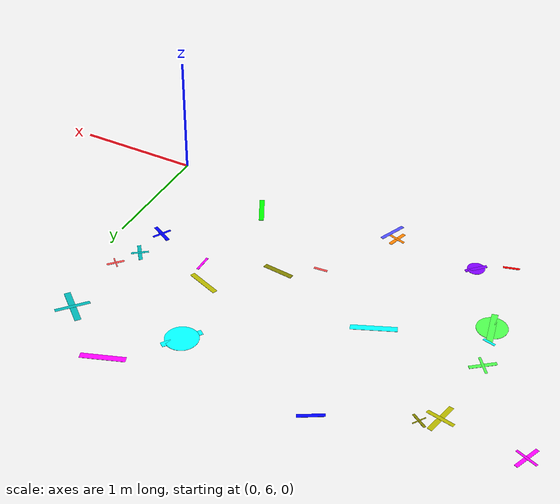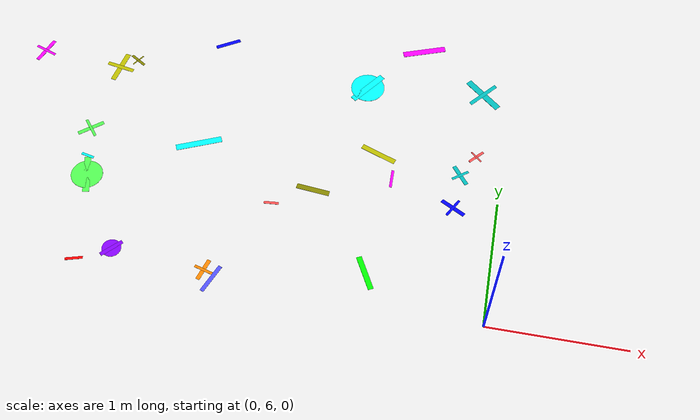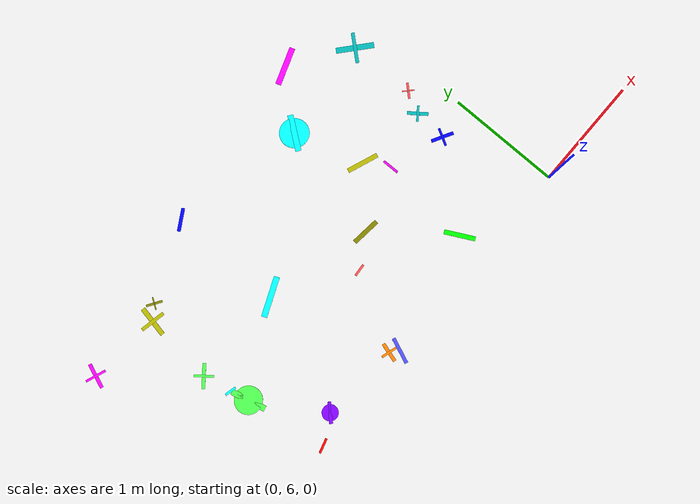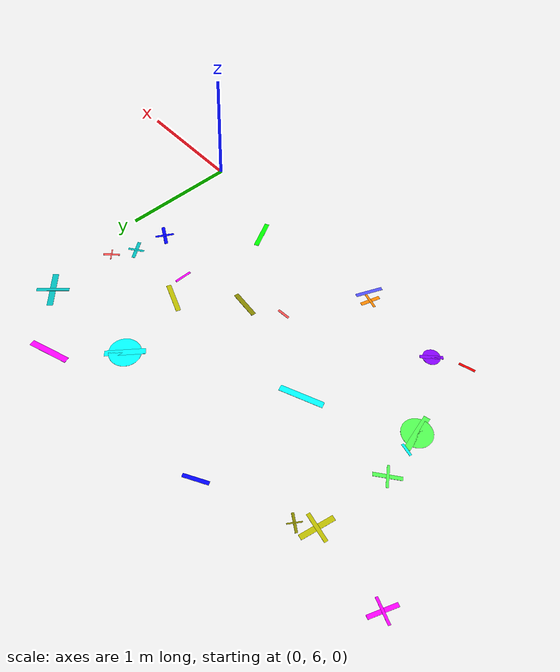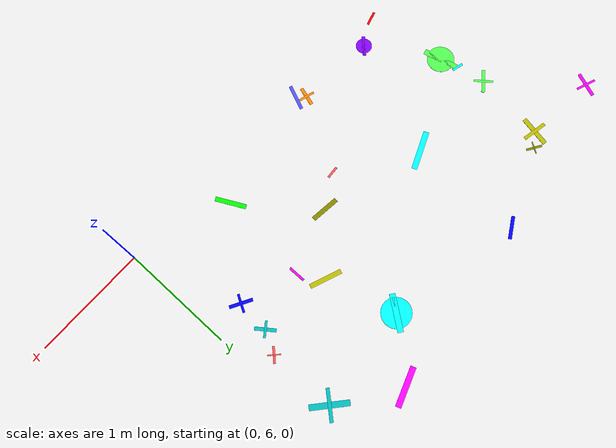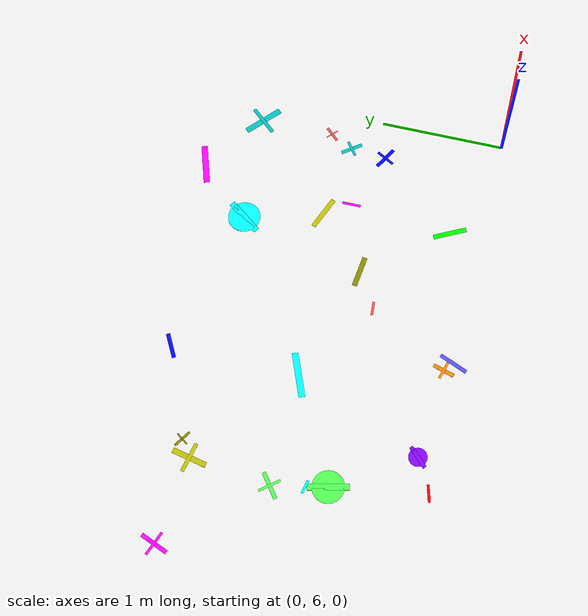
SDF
<sdf version="1.6">
 <world name="default">
  <model name="letter_I_922">
   <static>true</static>
   <pose>-3.72 7.80 0.003 0 0 4.356</pose>
   <link name="link">
    <visual name="visual">
     <geometry><box><size>0.22 0.03 0.002</size></box></geometry>
     <material>
      <ambient>1.0 0.0 1.0 1</ambient>
      <diffuse>1.0 0.0 1.0 1</diffuse>
      <specular>0.1 0.1 0.1 1</specular>
     </material>
    </visual>
    <visual name="visual2">
     <pose>0 0 0.001 0 0 1.57</pose>
     <geometry><box><size>0.18 0.02 0.001</size></box></geometry>
     <material><ambient>1.0 0.0 1.0 1</ambient><diffuse>1.0 0.0 1.0 1</diffuse></material>
    </visual>
   </link>
  </model>
  <model name="letter_X_987">
   <static>true</static>
   <pose>-2.93 6.00 0.012 0 0 3.421</pose>
   <link name="link">
    <visual name="visual">
     <geometry><box><size>0.13 0.02 0.002</size></box></geometry>
     <material>
      <ambient>1.0 0.0 0.0 1</ambient>
      <diffuse>1.0 0.0 0.0 1</diffuse>
      <specular>0.1 0.1 0.1 1</specular>
     </material>
    </visual>
   </link>
  </model>
  <model name="letter_G_988">
   <static>true</static>
   <pose>-2.69 6.13 0.008 0 0 3.938</pose>
   <link name="link">
    <visual name="visual">
     <geometry><box><size>0.18 0.03 0.002</size></box></geometry>
     <material>
      <ambient>0.5 0.0 1.0 1</ambient>
      <diffuse>0.5 0.0 1.0 1</diffuse>
      <specular>0.1 0.1 0.1 1</specular>
     </material>
    </visual>
    <visual name="visual2">
     <geometry><cylinder><radius>0.07</radius><length>0.002</length></cylinder></geometry>
     <material><ambient>0.5 0.0 1.0 1</ambient><diffuse>0.5 0.0 1.0 1</diffuse></material>
    </visual>
   </link>
  </model>
  <model name="letter_M_989">
   <static>true</static>
   <pose>-3.09 6.87 0.011 0 0 2.916</pose>
   <link name="link">
    <visual name="visual">
     <geometry><box><size>0.10 0.02 0.002</size></box></geometry>
     <material>
      <ambient>0.0 1.0 1.0 1</ambient>
      <diffuse>0.0 1.0 1.0 1</diffuse>
      <specular>0.1 0.1 0.1 1</specular>
     </material>
    </visual>
   </link>
  </model>
  <model name="letter_A_990">
   <static>true</static>
   <pose>-3.14 7.12 0.011 0 0 3.819</pose>
   <link name="link">
    <visual name="visual">
     <geometry><box><size>0.21 0.03 0.002</size></box></geometry>
     <material>
      <ambient>0.3 1.0 0.3 1</ambient>
      <diffuse>0.3 1.0 0.3 1</diffuse>
      <specular>0.1 0.1 0.1 1</specular>
     </material>
    </visual>
    <visual name="visual2">
     <pose>0 0 0.001 0 0 1.57</pose>
     <geometry><box><size>0.17 0.02 0.001</size></box></geometry>
     <material><ambient>0.3 1.0 0.3 1</ambient><diffuse>0.3 1.0 0.3 1</diffuse></material>
    </visual>
   </link>
  </model>
  <model name="letter_Q_991">
   <static>true</static>
   <pose>-3.05 6.71 0.004 0 0 4.948</pose>
   <link name="link">
    <visual name="visual">
     <geometry><box><size>0.31 0.05 0.002</size></box></geometry>
     <material>
      <ambient>0.3 1.0 0.3 1</ambient>
      <diffuse>0.3 1.0 0.3 1</diffuse>
      <specular>0.1 0.1 0.1 1</specular>
     </material>
    </visual>
    <visual name="visual2">
     <geometry><cylinder><radius>0.12</radius><length>0.002</length></cylinder></geometry>
     <material><ambient>0.3 1.0 0.3 1</ambient><diffuse>0.3 1.0 0.3 1</diffuse></material>
    </visual>
   </link>
  </model>
  <model name="letter_A_992">
   <static>true</static>
   <pose>-2.96 7.83 0.009 0 0 5.712</pose>
   <link name="link">
    <visual name="visual">
     <geometry><box><size>0.14 0.02 0.002</size></box></geometry>
     <material>
      <ambient>0.5 0.5 0.0 1</ambient>
      <diffuse>0.5 0.5 0.0 1</diffuse>
      <specular>0.1 0.1 0.1 1</specular>
     </material>
    </visual>
    <visual name="visual2">
     <pose>0 0 0.001 0 0 1.57</pose>
     <geometry><box><size>0.11 0.01 0.001</size></box></geometry>
     <material><ambient>0.5 0.5 0.0 1</ambient><diffuse>0.5 0.5 0.0 1</diffuse></material>
    </visual>
   </link>
  </model>
  <model name="letter_L_993">
   <static>true</static>
   <pose>-3.08 7.74 0.008 0 0 1.380</pose>
   <link name="link">
    <visual name="visual">
     <geometry><box><size>0.27 0.04 0.002</size></box></geometry>
     <material>
      <ambient>0.7 0.7 0.0 1</ambient>
      <diffuse>0.7 0.7 0.0 1</diffuse>
      <specular>0.1 0.1 0.1 1</specular>
     </material>
    </visual>
    <visual name="visual2">
     <pose>0 0 0.001 0 0 1.57</pose>
     <geometry><box><size>0.22 0.03 0.001</size></box></geometry>
     <material><ambient>0.7 0.7 0.0 1</ambient><diffuse>0.7 0.7 0.0 1</diffuse></material>
    </visual>
   </link>
  </model>
  <model name="letter_V_1050">
   <static>true</static>
   <pose>-1.93 6.02 0.006 0 0 1.186</pose>
   <link name="link">
    <visual name="visual">
     <geometry><box><size>0.23 0.03 0.002</size></box></geometry>
     <material>
      <ambient>0.3 0.3 1.0 1</ambient>
      <diffuse>0.3 0.3 1.0 1</diffuse>
      <specular>0.1 0.1 0.1 1</specular>
     </material>
    </visual>
   </link>
  </model>
  <model name="letter_I_1051">
   <static>true</static>
   <pose>-2.00 6.08 0.005 0 0 1.288</pose>
   <link name="link">
    <visual name="visual">
     <geometry><box><size>0.17 0.03 0.002</size></box></geometry>
     <material>
      <ambient>1.0 0.5 0.0 1</ambient>
      <diffuse>1.0 0.5 0.0 1</diffuse>
      <specular>0.1 0.1 0.1 1</specular>
     </material>
    </visual>
    <visual name="visual2">
     <pose>0 0 0.001 0 0 1.57</pose>
     <geometry><box><size>0.14 0.02 0.001</size></box></geometry>
     <material><ambient>1.0 0.5 0.0 1</ambient><diffuse>1.0 0.5 0.0 1</diffuse></material>
    </visual>
   </link>
  </model>
  <model name="letter_D_1052">
   <static>true</static>
   <pose>-1.64 6.71 0.010 0 0 3.220</pose>
   <link name="link">
    <visual name="visual">
     <geometry><box><size>0.11 0.02 0.002</size></box></geometry>
     <material>
      <ambient>1.0 0.3 0.3 1</ambient>
      <diffuse>1.0 0.3 0.3 1</diffuse>
      <specular>0.1 0.1 0.1 1</specular>
     </material>
    </visual>
   </link>
  </model>
  <model name="letter_Z_1053">
   <static>true</static>
   <pose>-2.29 7.13 0.011 0 0 3.548</pose>
   <link name="link">
    <visual name="visual">
     <geometry><box><size>0.35 0.05 0.002</size></box></geometry>
     <material>
      <ambient>0.0 1.0 1.0 1</ambient>
      <diffuse>0.0 1.0 1.0 1</diffuse>
      <specular>0.1 0.1 0.1 1</specular>
     </material>
    </visual>
   </link>
  </model>
  <model name="letter_X_1055">
   <static>true</static>
   <pose>-2.29 8.13 0.003 0 0 0.538</pose>
   <link name="link">
    <visual name="visual">
     <geometry><box><size>0.20 0.03 0.002</size></box></geometry>
     <material>
      <ambient>0.0 0.0 1.0 1</ambient>
      <diffuse>0.0 0.0 1.0 1</diffuse>
      <specular>0.1 0.1 0.1 1</specular>
     </material>
    </visual>
   </link>
  </model>
  <model name="letter_X_1109">
   <static>true</static>
   <pose>-0.87 6.26 0.008 0 0 5.192</pose>
   <link name="link">
    <visual name="visual">
     <geometry><box><size>0.27 0.04 0.002</size></box></geometry>
     <material>
      <ambient>0.0 1.0 0.0 1</ambient>
      <diffuse>0.0 1.0 0.0 1</diffuse>
      <specular>0.1 0.1 0.1 1</specular>
     </material>
    </visual>
   </link>
  </model>
  <model name="letter_P_1111">
   <static>true</static>
   <pose>-1.36 6.88 0.006 0 0 6.178</pose>
   <link name="link">
    <visual name="visual">
     <geometry><box><size>0.25 0.04 0.002</size></box></geometry>
     <material>
      <ambient>0.5 0.5 0.0 1</ambient>
      <diffuse>0.5 0.5 0.0 1</diffuse>
      <specular>0.1 0.1 0.1 1</specular>
     </material>
    </visual>
   </link>
  </model>
  <model name="letter_Y_1112">
   <static>true</static>
   <pose>-0.80 7.08 0.007 0 0 1.585</pose>
   <link name="link">
    <visual name="visual">
     <geometry><box><size>0.15 0.02 0.002</size></box></geometry>
     <material>
      <ambient>1.0 0.0 1.0 1</ambient>
      <diffuse>1.0 0.0 1.0 1</diffuse>
      <specular>0.1 0.1 0.1 1</specular>
     </material>
    </visual>
   </link>
  </model>
  <model name="letter_D_1113">
   <static>true</static>
   <pose>-0.93 7.28 0.011 0 0 2.779</pose>
   <link name="link">
    <visual name="visual">
     <geometry><box><size>0.28 0.04 0.002</size></box></geometry>
     <material>
      <ambient>0.7 0.7 0.0 1</ambient>
      <diffuse>0.7 0.7 0.0 1</diffuse>
      <specular>0.1 0.1 0.1 1</specular>
     </material>
    </visual>
   </link>
  </model>
  <model name="letter_G_1114">
   <static>true</static>
   <pose>-1.11 7.89 0.007 0 0 0.935</pose>
   <link name="link">
    <visual name="visual">
     <geometry><box><size>0.32 0.05 0.002</size></box></geometry>
     <material>
      <ambient>0.0 1.0 1.0 1</ambient>
      <diffuse>0.0 1.0 1.0 1</diffuse>
      <specular>0.1 0.1 0.1 1</specular>
     </material>
    </visual>
    <visual name="visual2">
     <geometry><cylinder><radius>0.13</radius><length>0.002</length></cylinder></geometry>
     <material><ambient>0.0 1.0 1.0 1</ambient><diffuse>0.0 1.0 1.0 1</diffuse></material>
    </visual>
   </link>
  </model>
  <model name="letter_V_1115">
   <static>true</static>
   <pose>-0.72 8.33 0.009 0 0 0.348</pose>
   <link name="link">
    <visual name="visual">
     <geometry><box><size>0.34 0.05 0.002</size></box></geometry>
     <material>
      <ambient>1.0 0.0 1.0 1</ambient>
      <diffuse>1.0 0.0 1.0 1</diffuse>
      <specular>0.1 0.1 0.1 1</specular>
     </material>
    </visual>
   </link>
  </model>
  <model name="letter_H_1169">
   <static>true</static>
   <pose>-0.20 7.39 0.007 0 0 3.967</pose>
   <link name="link">
    <visual name="visual">
     <geometry><box><size>0.14 0.02 0.002</size></box></geometry>
     <material>
      <ambient>1.0 0.3 0.3 1</ambient>
      <diffuse>1.0 0.3 0.3 1</diffuse>
      <specular>0.1 0.1 0.1 1</specular>
     </material>
    </visual>
    <visual name="visual2">
     <pose>0 0 0.001 0 0 1.57</pose>
     <geometry><box><size>0.11 0.01 0.001</size></box></geometry>
     <material><ambient>1.0 0.3 0.3 1</ambient><diffuse>1.0 0.3 0.3 1</diffuse></material>
    </visual>
   </link>
  </model>
  <model name="letter_H_1170">
   <static>true</static>
   <pose>-0.32 6.91 0.007 0 0 5.779</pose>
   <link name="link">
    <visual name="visual">
     <geometry><box><size>0.20 0.03 0.002</size></box></geometry>
     <material>
      <ambient>0.0 0.0 1.0 1</ambient>
      <diffuse>0.0 0.0 1.0 1</diffuse>
      <specular>0.1 0.1 0.1 1</specular>
     </material>
    </visual>
    <visual name="visual2">
     <pose>0 0 0.001 0 0 1.57</pose>
     <geometry><box><size>0.16 0.02 0.001</size></box></geometry>
     <material><ambient>0.0 0.0 1.0 1</ambient><diffuse>0.0 0.0 1.0 1</diffuse></material>
    </visual>
   </link>
  </model>
  <model name="letter_H_1171">
   <static>true</static>
   <pose>-0.30 7.20 0.011 0 0 5.358</pose>
   <link name="link">
    <visual name="visual">
     <geometry><box><size>0.18 0.03 0.002</size></box></geometry>
     <material>
      <ambient>0.0 0.7 0.7 1</ambient>
      <diffuse>0.0 0.7 0.7 1</diffuse>
      <specular>0.1 0.1 0.1 1</specular>
     </material>
    </visual>
    <visual name="visual2">
     <pose>0 0 0.001 0 0 1.57</pose>
     <geometry><box><size>0.14 0.02 0.001</size></box></geometry>
     <material><ambient>0.0 0.7 0.7 1</ambient><diffuse>0.0 0.7 0.7 1</diffuse></material>
    </visual>
   </link>
  </model>
  <model name="letter_I_1174">
   <static>true</static>
   <pose>-0.21 7.98 0.012 0 0 2.433</pose>
   <link name="link">
    <visual name="visual">
     <geometry><box><size>0.33 0.05 0.002</size></box></geometry>
     <material>
      <ambient>0.0 0.7 0.7 1</ambient>
      <diffuse>0.0 0.7 0.7 1</diffuse>
      <specular>0.1 0.1 0.1 1</specular>
     </material>
    </visual>
    <visual name="visual2">
     <pose>0 0 0.001 0 0 1.57</pose>
     <geometry><box><size>0.27 0.03 0.001</size></box></geometry>
     <material><ambient>0.0 0.7 0.7 1</ambient><diffuse>0.0 0.7 0.7 1</diffuse></material>
    </visual>
   </link>
  </model>
 </world>
</sdf>
